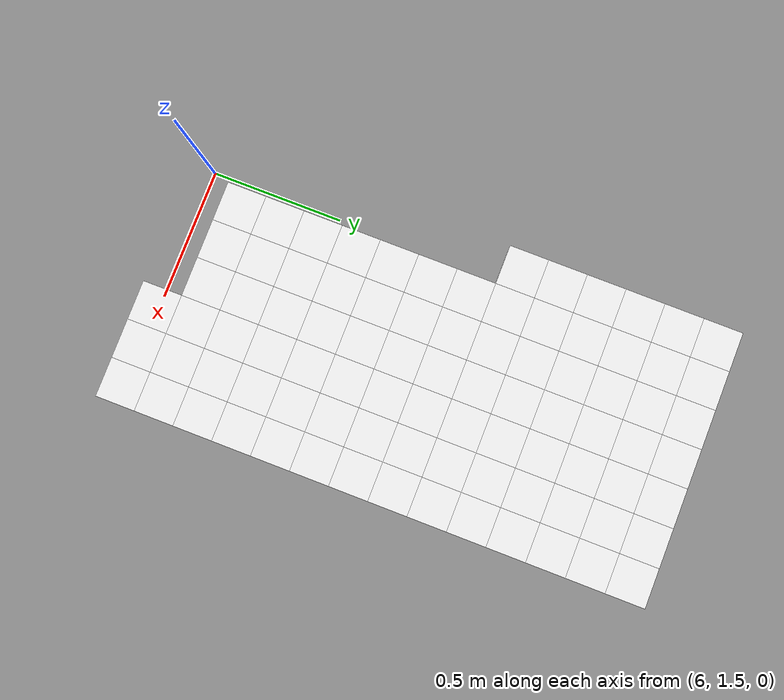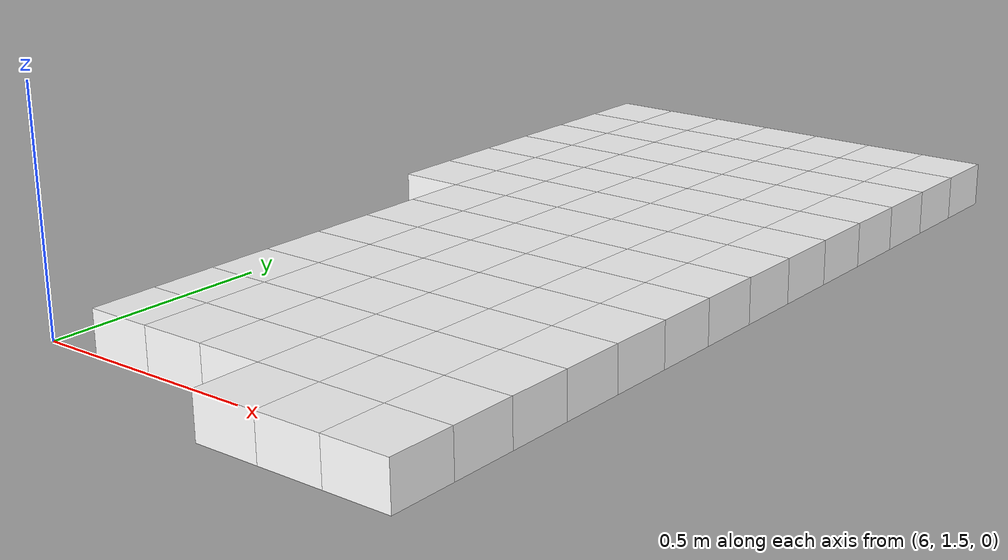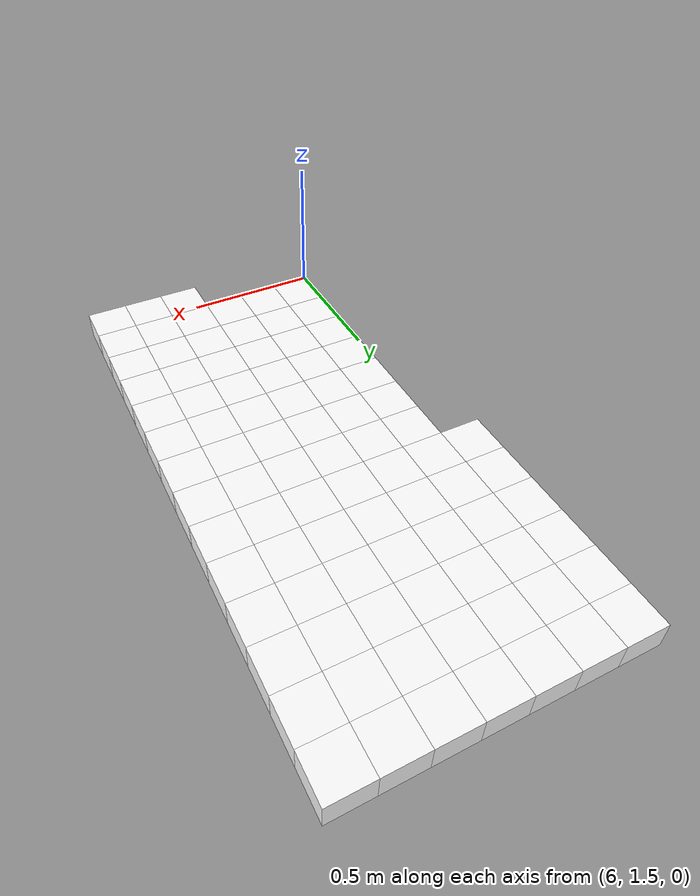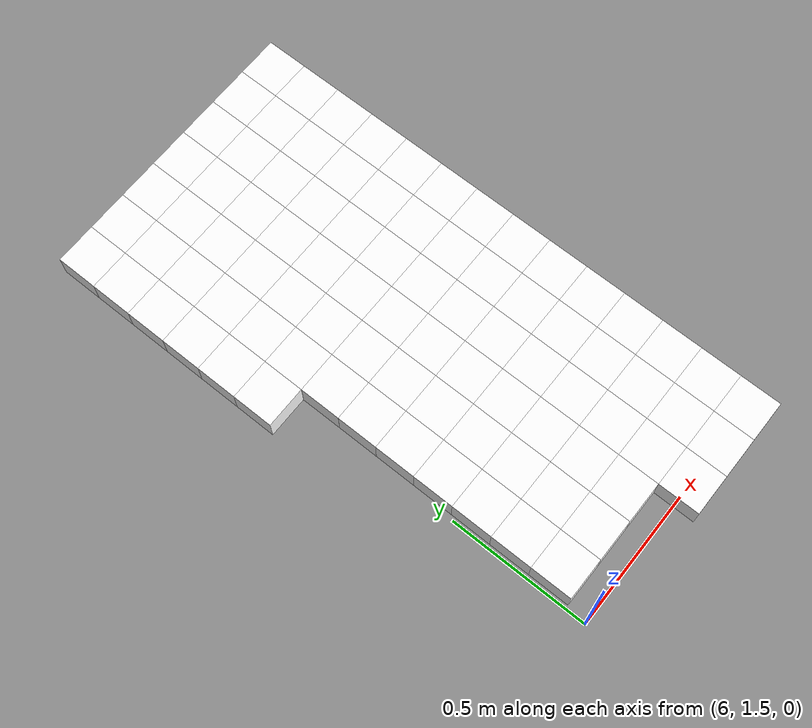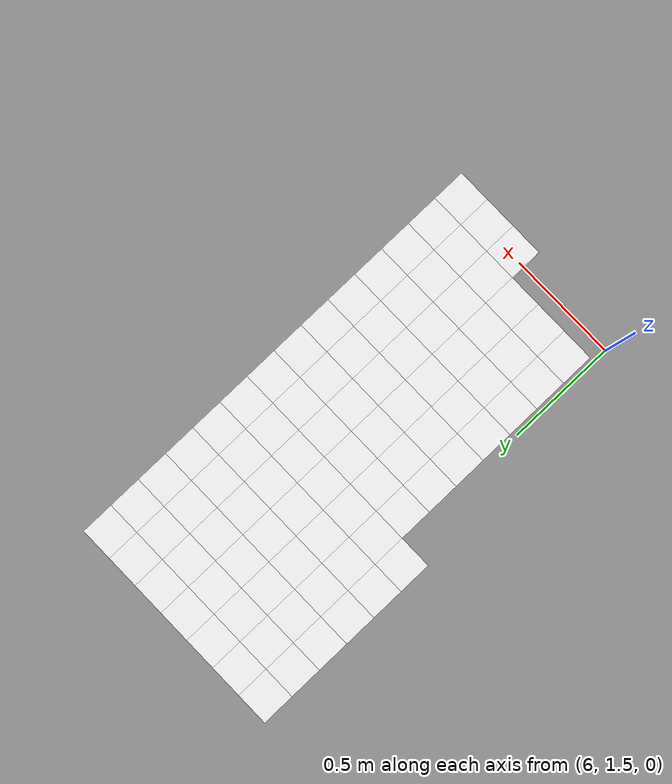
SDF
<sdf version="1.7">
 <world name="default">
  <include><uri>model://sun</uri></include>
  <model name="static_environment">
   <static>true</static>
   <link name="region_701">
    <pose>6.550000000000006 1.5 0.0 0.0 0.0 0.0</pose>
    <collision name="region_701_collision">
     <geometry><box><size>0.15 0.15 0.1</size></box></geometry>
     <surface><friction><ode><mu>1.0</mu><mu2>1.0</mu2></ode></friction></surface>
    </collision>
    <visual name="region_701_visual">
     <geometry><box><size>0.15 0.15 0.1</size></box></geometry>
     <material><ambient>1.0 1.0 1.0 1.0</ambient><diffuse>1.0 1.0 1.0 1.0</diffuse></material>
    </visual>
   </link>
   <link name="region_702">
    <pose>6.700000000000006 1.5 0.0 0.0 0.0 0.0</pose>
    <collision name="region_702_collision">
     <geometry><box><size>0.15 0.15 0.1</size></box></geometry>
     <surface><friction><ode><mu>1.0</mu><mu2>1.0</mu2></ode></friction></surface>
    </collision>
    <visual name="region_702_visual">
     <geometry><box><size>0.15 0.15 0.1</size></box></geometry>
     <material><ambient>1.0 1.0 1.0 1.0</ambient><diffuse>1.0 1.0 1.0 1.0</diffuse></material>
    </visual>
   </link>
   <link name="region_703">
    <pose>6.850000000000007 1.5 0.0 0.0 0.0 0.0</pose>
    <collision name="region_703_collision">
     <geometry><box><size>0.15 0.15 0.1</size></box></geometry>
     <surface><friction><ode><mu>1.0</mu><mu2>1.0</mu2></ode></friction></surface>
    </collision>
    <visual name="region_703_visual">
     <geometry><box><size>0.15 0.15 0.1</size></box></geometry>
     <material><ambient>1.0 1.0 1.0 1.0</ambient><diffuse>1.0 1.0 1.0 1.0</diffuse></material>
    </visual>
   </link>
   <link name="region_718">
    <pose>6.100000000000005 1.65 0.0 0.0 0.0 0.0</pose>
    <collision name="region_718_collision">
     <geometry><box><size>0.15 0.15 0.1</size></box></geometry>
     <surface><friction><ode><mu>1.0</mu><mu2>1.0</mu2></ode></friction></surface>
    </collision>
    <visual name="region_718_visual">
     <geometry><box><size>0.15 0.15 0.1</size></box></geometry>
     <material><ambient>1.0 1.0 1.0 1.0</ambient><diffuse>1.0 1.0 1.0 1.0</diffuse></material>
    </visual>
   </link>
   <link name="region_719">
    <pose>6.250000000000005 1.65 0.0 0.0 0.0 0.0</pose>
    <collision name="region_719_collision">
     <geometry><box><size>0.15 0.15 0.1</size></box></geometry>
     <surface><friction><ode><mu>1.0</mu><mu2>1.0</mu2></ode></friction></surface>
    </collision>
    <visual name="region_719_visual">
     <geometry><box><size>0.15 0.15 0.1</size></box></geometry>
     <material><ambient>1.0 1.0 1.0 1.0</ambient><diffuse>1.0 1.0 1.0 1.0</diffuse></material>
    </visual>
   </link>
   <link name="region_720">
    <pose>6.400000000000006 1.65 0.0 0.0 0.0 0.0</pose>
    <collision name="region_720_collision">
     <geometry><box><size>0.15 0.15 0.1</size></box></geometry>
     <surface><friction><ode><mu>1.0</mu><mu2>1.0</mu2></ode></friction></surface>
    </collision>
    <visual name="region_720_visual">
     <geometry><box><size>0.15 0.15 0.1</size></box></geometry>
     <material><ambient>1.0 1.0 1.0 1.0</ambient><diffuse>1.0 1.0 1.0 1.0</diffuse></material>
    </visual>
   </link>
   <link name="region_721">
    <pose>6.550000000000006 1.65 0.0 0.0 0.0 0.0</pose>
    <collision name="region_721_collision">
     <geometry><box><size>0.15 0.15 0.1</size></box></geometry>
     <surface><friction><ode><mu>1.0</mu><mu2>1.0</mu2></ode></friction></surface>
    </collision>
    <visual name="region_721_visual">
     <geometry><box><size>0.15 0.15 0.1</size></box></geometry>
     <material><ambient>1.0 1.0 1.0 1.0</ambient><diffuse>1.0 1.0 1.0 1.0</diffuse></material>
    </visual>
   </link>
   <link name="region_722">
    <pose>6.700000000000006 1.65 0.0 0.0 0.0 0.0</pose>
    <collision name="region_722_collision">
     <geometry><box><size>0.15 0.15 0.1</size></box></geometry>
     <surface><friction><ode><mu>1.0</mu><mu2>1.0</mu2></ode></friction></surface>
    </collision>
    <visual name="region_722_visual">
     <geometry><box><size>0.15 0.15 0.1</size></box></geometry>
     <material><ambient>1.0 1.0 1.0 1.0</ambient><diffuse>1.0 1.0 1.0 1.0</diffuse></material>
    </visual>
   </link>
   <link name="region_723">
    <pose>6.850000000000007 1.65 0.0 0.0 0.0 0.0</pose>
    <collision name="region_723_collision">
     <geometry><box><size>0.15 0.15 0.1</size></box></geometry>
     <surface><friction><ode><mu>1.0</mu><mu2>1.0</mu2></ode></friction></surface>
    </collision>
    <visual name="region_723_visual">
     <geometry><box><size>0.15 0.15 0.1</size></box></geometry>
     <material><ambient>1.0 1.0 1.0 1.0</ambient><diffuse>1.0 1.0 1.0 1.0</diffuse></material>
    </visual>
   </link>
   <link name="region_738">
    <pose>6.100000000000005 1.7999999999999998 0.0 0.0 0.0 0.0</pose>
    <collision name="region_738_collision">
     <geometry><box><size>0.15 0.15 0.1</size></box></geometry>
     <surface><friction><ode><mu>1.0</mu><mu2>1.0</mu2></ode></friction></surface>
    </collision>
    <visual name="region_738_visual">
     <geometry><box><size>0.15 0.15 0.1</size></box></geometry>
     <material><ambient>1.0 1.0 1.0 1.0</ambient><diffuse>1.0 1.0 1.0 1.0</diffuse></material>
    </visual>
   </link>
   <link name="region_739">
    <pose>6.250000000000005 1.7999999999999998 0.0 0.0 0.0 0.0</pose>
    <collision name="region_739_collision">
     <geometry><box><size>0.15 0.15 0.1</size></box></geometry>
     <surface><friction><ode><mu>1.0</mu><mu2>1.0</mu2></ode></friction></surface>
    </collision>
    <visual name="region_739_visual">
     <geometry><box><size>0.15 0.15 0.1</size></box></geometry>
     <material><ambient>1.0 1.0 1.0 1.0</ambient><diffuse>1.0 1.0 1.0 1.0</diffuse></material>
    </visual>
   </link>
   <link name="region_740">
    <pose>6.400000000000006 1.7999999999999998 0.0 0.0 0.0 0.0</pose>
    <collision name="region_740_collision">
     <geometry><box><size>0.15 0.15 0.1</size></box></geometry>
     <surface><friction><ode><mu>1.0</mu><mu2>1.0</mu2></ode></friction></surface>
    </collision>
    <visual name="region_740_visual">
     <geometry><box><size>0.15 0.15 0.1</size></box></geometry>
     <material><ambient>1.0 1.0 1.0 1.0</ambient><diffuse>1.0 1.0 1.0 1.0</diffuse></material>
    </visual>
   </link>
   <link name="region_741">
    <pose>6.550000000000006 1.7999999999999998 0.0 0.0 0.0 0.0</pose>
    <collision name="region_741_collision">
     <geometry><box><size>0.15 0.15 0.1</size></box></geometry>
     <surface><friction><ode><mu>1.0</mu><mu2>1.0</mu2></ode></friction></surface>
    </collision>
    <visual name="region_741_visual">
     <geometry><box><size>0.15 0.15 0.1</size></box></geometry>
     <material><ambient>1.0 1.0 1.0 1.0</ambient><diffuse>1.0 1.0 1.0 1.0</diffuse></material>
    </visual>
   </link>
   <link name="region_742">
    <pose>6.700000000000006 1.7999999999999998 0.0 0.0 0.0 0.0</pose>
    <collision name="region_742_collision">
     <geometry><box><size>0.15 0.15 0.1</size></box></geometry>
     <surface><friction><ode><mu>1.0</mu><mu2>1.0</mu2></ode></friction></surface>
    </collision>
    <visual name="region_742_visual">
     <geometry><box><size>0.15 0.15 0.1</size></box></geometry>
     <material><ambient>1.0 1.0 1.0 1.0</ambient><diffuse>1.0 1.0 1.0 1.0</diffuse></material>
    </visual>
   </link>
   <link name="region_743">
    <pose>6.850000000000007 1.7999999999999998 0.0 0.0 0.0 0.0</pose>
    <collision name="region_743_collision">
     <geometry><box><size>0.15 0.15 0.1</size></box></geometry>
     <surface><friction><ode><mu>1.0</mu><mu2>1.0</mu2></ode></friction></surface>
    </collision>
    <visual name="region_743_visual">
     <geometry><box><size>0.15 0.15 0.1</size></box></geometry>
     <material><ambient>1.0 1.0 1.0 1.0</ambient><diffuse>1.0 1.0 1.0 1.0</diffuse></material>
    </visual>
   </link>
   <link name="region_758">
    <pose>6.100000000000005 1.9499999999999997 0.0 0.0 0.0 0.0</pose>
    <collision name="region_758_collision">
     <geometry><box><size>0.15 0.15 0.1</size></box></geometry>
     <surface><friction><ode><mu>1.0</mu><mu2>1.0</mu2></ode></friction></surface>
    </collision>
    <visual name="region_758_visual">
     <geometry><box><size>0.15 0.15 0.1</size></box></geometry>
     <material><ambient>1.0 1.0 1.0 1.0</ambient><diffuse>1.0 1.0 1.0 1.0</diffuse></material>
    </visual>
   </link>
   <link name="region_759">
    <pose>6.250000000000005 1.9499999999999997 0.0 0.0 0.0 0.0</pose>
    <collision name="region_759_collision">
     <geometry><box><size>0.15 0.15 0.1</size></box></geometry>
     <surface><friction><ode><mu>1.0</mu><mu2>1.0</mu2></ode></friction></surface>
    </collision>
    <visual name="region_759_visual">
     <geometry><box><size>0.15 0.15 0.1</size></box></geometry>
     <material><ambient>1.0 1.0 1.0 1.0</ambient><diffuse>1.0 1.0 1.0 1.0</diffuse></material>
    </visual>
   </link>
   <link name="region_760">
    <pose>6.400000000000006 1.9499999999999997 0.0 0.0 0.0 0.0</pose>
    <collision name="region_760_collision">
     <geometry><box><size>0.15 0.15 0.1</size></box></geometry>
     <surface><friction><ode><mu>1.0</mu><mu2>1.0</mu2></ode></friction></surface>
    </collision>
    <visual name="region_760_visual">
     <geometry><box><size>0.15 0.15 0.1</size></box></geometry>
     <material><ambient>1.0 1.0 1.0 1.0</ambient><diffuse>1.0 1.0 1.0 1.0</diffuse></material>
    </visual>
   </link>
   <link name="region_761">
    <pose>6.550000000000006 1.9499999999999997 0.0 0.0 0.0 0.0</pose>
    <collision name="region_761_collision">
     <geometry><box><size>0.15 0.15 0.1</size></box></geometry>
     <surface><friction><ode><mu>1.0</mu><mu2>1.0</mu2></ode></friction></surface>
    </collision>
    <visual name="region_761_visual">
     <geometry><box><size>0.15 0.15 0.1</size></box></geometry>
     <material><ambient>1.0 1.0 1.0 1.0</ambient><diffuse>1.0 1.0 1.0 1.0</diffuse></material>
    </visual>
   </link>
   <link name="region_762">
    <pose>6.700000000000006 1.9499999999999997 0.0 0.0 0.0 0.0</pose>
    <collision name="region_762_collision">
     <geometry><box><size>0.15 0.15 0.1</size></box></geometry>
     <surface><friction><ode><mu>1.0</mu><mu2>1.0</mu2></ode></friction></surface>
    </collision>
    <visual name="region_762_visual">
     <geometry><box><size>0.15 0.15 0.1</size></box></geometry>
     <material><ambient>1.0 1.0 1.0 1.0</ambient><diffuse>1.0 1.0 1.0 1.0</diffuse></material>
    </visual>
   </link>
   <link name="region_763">
    <pose>6.850000000000007 1.9499999999999997 0.0 0.0 0.0 0.0</pose>
    <collision name="region_763_collision">
     <geometry><box><size>0.15 0.15 0.1</size></box></geometry>
     <surface><friction><ode><mu>1.0</mu><mu2>1.0</mu2></ode></friction></surface>
    </collision>
    <visual name="region_763_visual">
     <geometry><box><size>0.15 0.15 0.1</size></box></geometry>
     <material><ambient>1.0 1.0 1.0 1.0</ambient><diffuse>1.0 1.0 1.0 1.0</diffuse></material>
    </visual>
   </link>
   <link name="region_778">
    <pose>6.100000000000005 2.0999999999999996 0.0 0.0 0.0 0.0</pose>
    <collision name="region_778_collision">
     <geometry><box><size>0.15 0.15 0.1</size></box></geometry>
     <surface><friction><ode><mu>1.0</mu><mu2>1.0</mu2></ode></friction></surface>
    </collision>
    <visual name="region_778_visual">
     <geometry><box><size>0.15 0.15 0.1</size></box></geometry>
     <material><ambient>1.0 1.0 1.0 1.0</ambient><diffuse>1.0 1.0 1.0 1.0</diffuse></material>
    </visual>
   </link>
   <link name="region_779">
    <pose>6.250000000000005 2.0999999999999996 0.0 0.0 0.0 0.0</pose>
    <collision name="region_779_collision">
     <geometry><box><size>0.15 0.15 0.1</size></box></geometry>
     <surface><friction><ode><mu>1.0</mu><mu2>1.0</mu2></ode></friction></surface>
    </collision>
    <visual name="region_779_visual">
     <geometry><box><size>0.15 0.15 0.1</size></box></geometry>
     <material><ambient>1.0 1.0 1.0 1.0</ambient><diffuse>1.0 1.0 1.0 1.0</diffuse></material>
    </visual>
   </link>
   <link name="region_780">
    <pose>6.400000000000006 2.0999999999999996 0.0 0.0 0.0 0.0</pose>
    <collision name="region_780_collision">
     <geometry><box><size>0.15 0.15 0.1</size></box></geometry>
     <surface><friction><ode><mu>1.0</mu><mu2>1.0</mu2></ode></friction></surface>
    </collision>
    <visual name="region_780_visual">
     <geometry><box><size>0.15 0.15 0.1</size></box></geometry>
     <material><ambient>1.0 1.0 1.0 1.0</ambient><diffuse>1.0 1.0 1.0 1.0</diffuse></material>
    </visual>
   </link>
   <link name="region_781">
    <pose>6.550000000000006 2.0999999999999996 0.0 0.0 0.0 0.0</pose>
    <collision name="region_781_collision">
     <geometry><box><size>0.15 0.15 0.1</size></box></geometry>
     <surface><friction><ode><mu>1.0</mu><mu2>1.0</mu2></ode></friction></surface>
    </collision>
    <visual name="region_781_visual">
     <geometry><box><size>0.15 0.15 0.1</size></box></geometry>
     <material><ambient>1.0 1.0 1.0 1.0</ambient><diffuse>1.0 1.0 1.0 1.0</diffuse></material>
    </visual>
   </link>
   <link name="region_782">
    <pose>6.700000000000006 2.0999999999999996 0.0 0.0 0.0 0.0</pose>
    <collision name="region_782_collision">
     <geometry><box><size>0.15 0.15 0.1</size></box></geometry>
     <surface><friction><ode><mu>1.0</mu><mu2>1.0</mu2></ode></friction></surface>
    </collision>
    <visual name="region_782_visual">
     <geometry><box><size>0.15 0.15 0.1</size></box></geometry>
     <material><ambient>1.0 1.0 1.0 1.0</ambient><diffuse>1.0 1.0 1.0 1.0</diffuse></material>
    </visual>
   </link>
   <link name="region_783">
    <pose>6.850000000000007 2.0999999999999996 0.0 0.0 0.0 0.0</pose>
    <collision name="region_783_collision">
     <geometry><box><size>0.15 0.15 0.1</size></box></geometry>
     <surface><friction><ode><mu>1.0</mu><mu2>1.0</mu2></ode></friction></surface>
    </collision>
    <visual name="region_783_visual">
     <geometry><box><size>0.15 0.15 0.1</size></box></geometry>
     <material><ambient>1.0 1.0 1.0 1.0</ambient><diffuse>1.0 1.0 1.0 1.0</diffuse></material>
    </visual>
   </link>
   <link name="region_798">
    <pose>6.100000000000005 2.2499999999999996 0.0 0.0 0.0 0.0</pose>
    <collision name="region_798_collision">
     <geometry><box><size>0.15 0.15 0.1</size></box></geometry>
     <surface><friction><ode><mu>1.0</mu><mu2>1.0</mu2></ode></friction></surface>
    </collision>
    <visual name="region_798_visual">
     <geometry><box><size>0.15 0.15 0.1</size></box></geometry>
     <material><ambient>1.0 1.0 1.0 1.0</ambient><diffuse>1.0 1.0 1.0 1.0</diffuse></material>
    </visual>
   </link>
   <link name="region_799">
    <pose>6.250000000000005 2.2499999999999996 0.0 0.0 0.0 0.0</pose>
    <collision name="region_799_collision">
     <geometry><box><size>0.15 0.15 0.1</size></box></geometry>
     <surface><friction><ode><mu>1.0</mu><mu2>1.0</mu2></ode></friction></surface>
    </collision>
    <visual name="region_799_visual">
     <geometry><box><size>0.15 0.15 0.1</size></box></geometry>
     <material><ambient>1.0 1.0 1.0 1.0</ambient><diffuse>1.0 1.0 1.0 1.0</diffuse></material>
    </visual>
   </link>
   <link name="region_800">
    <pose>6.400000000000006 2.2499999999999996 0.0 0.0 0.0 0.0</pose>
    <collision name="region_800_collision">
     <geometry><box><size>0.15 0.15 0.1</size></box></geometry>
     <surface><friction><ode><mu>1.0</mu><mu2>1.0</mu2></ode></friction></surface>
    </collision>
    <visual name="region_800_visual">
     <geometry><box><size>0.15 0.15 0.1</size></box></geometry>
     <material><ambient>1.0 1.0 1.0 1.0</ambient><diffuse>1.0 1.0 1.0 1.0</diffuse></material>
    </visual>
   </link>
   <link name="region_801">
    <pose>6.550000000000006 2.2499999999999996 0.0 0.0 0.0 0.0</pose>
    <collision name="region_801_collision">
     <geometry><box><size>0.15 0.15 0.1</size></box></geometry>
     <surface><friction><ode><mu>1.0</mu><mu2>1.0</mu2></ode></friction></surface>
    </collision>
    <visual name="region_801_visual">
     <geometry><box><size>0.15 0.15 0.1</size></box></geometry>
     <material><ambient>1.0 1.0 1.0 1.0</ambient><diffuse>1.0 1.0 1.0 1.0</diffuse></material>
    </visual>
   </link>
   <link name="region_802">
    <pose>6.700000000000006 2.2499999999999996 0.0 0.0 0.0 0.0</pose>
    <collision name="region_802_collision">
     <geometry><box><size>0.15 0.15 0.1</size></box></geometry>
     <surface><friction><ode><mu>1.0</mu><mu2>1.0</mu2></ode></friction></surface>
    </collision>
    <visual name="region_802_visual">
     <geometry><box><size>0.15 0.15 0.1</size></box></geometry>
     <material><ambient>1.0 1.0 1.0 1.0</ambient><diffuse>1.0 1.0 1.0 1.0</diffuse></material>
    </visual>
   </link>
   <link name="region_803">
    <pose>6.850000000000007 2.2499999999999996 0.0 0.0 0.0 0.0</pose>
    <collision name="region_803_collision">
     <geometry><box><size>0.15 0.15 0.1</size></box></geometry>
     <surface><friction><ode><mu>1.0</mu><mu2>1.0</mu2></ode></friction></surface>
    </collision>
    <visual name="region_803_visual">
     <geometry><box><size>0.15 0.15 0.1</size></box></geometry>
     <material><ambient>1.0 1.0 1.0 1.0</ambient><diffuse>1.0 1.0 1.0 1.0</diffuse></material>
    </visual>
   </link>
   <link name="region_818">
    <pose>6.100000000000005 2.3999999999999995 0.0 0.0 0.0 0.0</pose>
    <collision name="region_818_collision">
     <geometry><box><size>0.15 0.15 0.1</size></box></geometry>
     <surface><friction><ode><mu>1.0</mu><mu2>1.0</mu2></ode></friction></surface>
    </collision>
    <visual name="region_818_visual">
     <geometry><box><size>0.15 0.15 0.1</size></box></geometry>
     <material><ambient>1.0 1.0 1.0 1.0</ambient><diffuse>1.0 1.0 1.0 1.0</diffuse></material>
    </visual>
   </link>
   <link name="region_819">
    <pose>6.250000000000005 2.3999999999999995 0.0 0.0 0.0 0.0</pose>
    <collision name="region_819_collision">
     <geometry><box><size>0.15 0.15 0.1</size></box></geometry>
     <surface><friction><ode><mu>1.0</mu><mu2>1.0</mu2></ode></friction></surface>
    </collision>
    <visual name="region_819_visual">
     <geometry><box><size>0.15 0.15 0.1</size></box></geometry>
     <material><ambient>1.0 1.0 1.0 1.0</ambient><diffuse>1.0 1.0 1.0 1.0</diffuse></material>
    </visual>
   </link>
   <link name="region_820">
    <pose>6.400000000000006 2.3999999999999995 0.0 0.0 0.0 0.0</pose>
    <collision name="region_820_collision">
     <geometry><box><size>0.15 0.15 0.1</size></box></geometry>
     <surface><friction><ode><mu>1.0</mu><mu2>1.0</mu2></ode></friction></surface>
    </collision>
    <visual name="region_820_visual">
     <geometry><box><size>0.15 0.15 0.1</size></box></geometry>
     <material><ambient>1.0 1.0 1.0 1.0</ambient><diffuse>1.0 1.0 1.0 1.0</diffuse></material>
    </visual>
   </link>
   <link name="region_821">
    <pose>6.550000000000006 2.3999999999999995 0.0 0.0 0.0 0.0</pose>
    <collision name="region_821_collision">
     <geometry><box><size>0.15 0.15 0.1</size></box></geometry>
     <surface><friction><ode><mu>1.0</mu><mu2>1.0</mu2></ode></friction></surface>
    </collision>
    <visual name="region_821_visual">
     <geometry><box><size>0.15 0.15 0.1</size></box></geometry>
     <material><ambient>1.0 1.0 1.0 1.0</ambient><diffuse>1.0 1.0 1.0 1.0</diffuse></material>
    </visual>
   </link>
   <link name="region_822">
    <pose>6.700000000000006 2.3999999999999995 0.0 0.0 0.0 0.0</pose>
    <collision name="region_822_collision">
     <geometry><box><size>0.15 0.15 0.1</size></box></geometry>
     <surface><friction><ode><mu>1.0</mu><mu2>1.0</mu2></ode></friction></surface>
    </collision>
    <visual name="region_822_visual">
     <geometry><box><size>0.15 0.15 0.1</size></box></geometry>
     <material><ambient>1.0 1.0 1.0 1.0</ambient><diffuse>1.0 1.0 1.0 1.0</diffuse></material>
    </visual>
   </link>
   <link name="region_823">
    <pose>6.850000000000007 2.3999999999999995 0.0 0.0 0.0 0.0</pose>
    <collision name="region_823_collision">
     <geometry><box><size>0.15 0.15 0.1</size></box></geometry>
     <surface><friction><ode><mu>1.0</mu><mu2>1.0</mu2></ode></friction></surface>
    </collision>
    <visual name="region_823_visual">
     <geometry><box><size>0.15 0.15 0.1</size></box></geometry>
     <material><ambient>1.0 1.0 1.0 1.0</ambient><diffuse>1.0 1.0 1.0 1.0</diffuse></material>
    </visual>
   </link>
   <link name="region_838">
    <pose>6.100000000000005 2.5499999999999994 0.0 0.0 0.0 0.0</pose>
    <collision name="region_838_collision">
     <geometry><box><size>0.15 0.15 0.1</size></box></geometry>
     <surface><friction><ode><mu>1.0</mu><mu2>1.0</mu2></ode></friction></surface>
    </collision>
    <visual name="region_838_visual">
     <geometry><box><size>0.15 0.15 0.1</size></box></geometry>
     <material><ambient>1.0 1.0 1.0 1.0</ambient><diffuse>1.0 1.0 1.0 1.0</diffuse></material>
    </visual>
   </link>
   <link name="region_839">
    <pose>6.250000000000005 2.5499999999999994 0.0 0.0 0.0 0.0</pose>
    <collision name="region_839_collision">
     <geometry><box><size>0.15 0.15 0.1</size></box></geometry>
     <surface><friction><ode><mu>1.0</mu><mu2>1.0</mu2></ode></friction></surface>
    </collision>
    <visual name="region_839_visual">
     <geometry><box><size>0.15 0.15 0.1</size></box></geometry>
     <material><ambient>1.0 1.0 1.0 1.0</ambient><diffuse>1.0 1.0 1.0 1.0</diffuse></material>
    </visual>
   </link>
   <link name="region_840">
    <pose>6.400000000000006 2.5499999999999994 0.0 0.0 0.0 0.0</pose>
    <collision name="region_840_collision">
     <geometry><box><size>0.15 0.15 0.1</size></box></geometry>
     <surface><friction><ode><mu>1.0</mu><mu2>1.0</mu2></ode></friction></surface>
    </collision>
    <visual name="region_840_visual">
     <geometry><box><size>0.15 0.15 0.1</size></box></geometry>
     <material><ambient>1.0 1.0 1.0 1.0</ambient><diffuse>1.0 1.0 1.0 1.0</diffuse></material>
    </visual>
   </link>
   <link name="region_841">
    <pose>6.550000000000006 2.5499999999999994 0.0 0.0 0.0 0.0</pose>
    <collision name="region_841_collision">
     <geometry><box><size>0.15 0.15 0.1</size></box></geometry>
     <surface><friction><ode><mu>1.0</mu><mu2>1.0</mu2></ode></friction></surface>
    </collision>
    <visual name="region_841_visual">
     <geometry><box><size>0.15 0.15 0.1</size></box></geometry>
     <material><ambient>1.0 1.0 1.0 1.0</ambient><diffuse>1.0 1.0 1.0 1.0</diffuse></material>
    </visual>
   </link>
   <link name="region_842">
    <pose>6.700000000000006 2.5499999999999994 0.0 0.0 0.0 0.0</pose>
    <collision name="region_842_collision">
     <geometry><box><size>0.15 0.15 0.1</size></box></geometry>
     <surface><friction><ode><mu>1.0</mu><mu2>1.0</mu2></ode></friction></surface>
    </collision>
    <visual name="region_842_visual">
     <geometry><box><size>0.15 0.15 0.1</size></box></geometry>
     <material><ambient>1.0 1.0 1.0 1.0</ambient><diffuse>1.0 1.0 1.0 1.0</diffuse></material>
    </visual>
   </link>
   <link name="region_843">
    <pose>6.850000000000007 2.5499999999999994 0.0 0.0 0.0 0.0</pose>
    <collision name="region_843_collision">
     <geometry><box><size>0.15 0.15 0.1</size></box></geometry>
     <surface><friction><ode><mu>1.0</mu><mu2>1.0</mu2></ode></friction></surface>
    </collision>
    <visual name="region_843_visual">
     <geometry><box><size>0.15 0.15 0.1</size></box></geometry>
     <material><ambient>1.0 1.0 1.0 1.0</ambient><diffuse>1.0 1.0 1.0 1.0</diffuse></material>
    </visual>
   </link>
   <link name="region_857">
    <pose>5.950000000000005 2.6999999999999997 0.0 0.0 0.0 0.0</pose>
    <collision name="region_857_collision">
     <geometry><box><size>0.15 0.15 0.1</size></box></geometry>
     <surface><friction><ode><mu>1.0</mu><mu2>1.0</mu2></ode></friction></surface>
    </collision>
    <visual name="region_857_visual">
     <geometry><box><size>0.15 0.15 0.1</size></box></geometry>
     <material><ambient>1.0 1.0 1.0 1.0</ambient><diffuse>1.0 1.0 1.0 1.0</diffuse></material>
    </visual>
   </link>
   <link name="region_858">
    <pose>6.100000000000005 2.6999999999999997 0.0 0.0 0.0 0.0</pose>
    <collision name="region_858_collision">
     <geometry><box><size>0.15 0.15 0.1</size></box></geometry>
     <surface><friction><ode><mu>1.0</mu><mu2>1.0</mu2></ode></friction></surface>
    </collision>
    <visual name="region_858_visual">
     <geometry><box><size>0.15 0.15 0.1</size></box></geometry>
     <material><ambient>1.0 1.0 1.0 1.0</ambient><diffuse>1.0 1.0 1.0 1.0</diffuse></material>
    </visual>
   </link>
   <link name="region_859">
    <pose>6.250000000000005 2.6999999999999997 0.0 0.0 0.0 0.0</pose>
    <collision name="region_859_collision">
     <geometry><box><size>0.15 0.15 0.1</size></box></geometry>
     <surface><friction><ode><mu>1.0</mu><mu2>1.0</mu2></ode></friction></surface>
    </collision>
    <visual name="region_859_visual">
     <geometry><box><size>0.15 0.15 0.1</size></box></geometry>
     <material><ambient>1.0 1.0 1.0 1.0</ambient><diffuse>1.0 1.0 1.0 1.0</diffuse></material>
    </visual>
   </link>
   <link name="region_860">
    <pose>6.400000000000006 2.6999999999999997 0.0 0.0 0.0 0.0</pose>
    <collision name="region_860_collision">
     <geometry><box><size>0.15 0.15 0.1</size></box></geometry>
     <surface><friction><ode><mu>1.0</mu><mu2>1.0</mu2></ode></friction></surface>
    </collision>
    <visual name="region_860_visual">
     <geometry><box><size>0.15 0.15 0.1</size></box></geometry>
     <material><ambient>1.0 1.0 1.0 1.0</ambient><diffuse>1.0 1.0 1.0 1.0</diffuse></material>
    </visual>
   </link>
   <link name="region_861">
    <pose>6.550000000000006 2.6999999999999997 0.0 0.0 0.0 0.0</pose>
    <collision name="region_861_collision">
     <geometry><box><size>0.15 0.15 0.1</size></box></geometry>
     <surface><friction><ode><mu>1.0</mu><mu2>1.0</mu2></ode></friction></surface>
    </collision>
    <visual name="region_861_visual">
     <geometry><box><size>0.15 0.15 0.1</size></box></geometry>
     <material><ambient>1.0 1.0 1.0 1.0</ambient><diffuse>1.0 1.0 1.0 1.0</diffuse></material>
    </visual>
   </link>
   <link name="region_862">
    <pose>6.700000000000006 2.6999999999999997 0.0 0.0 0.0 0.0</pose>
    <collision name="region_862_collision">
     <geometry><box><size>0.15 0.15 0.1</size></box></geometry>
     <surface><friction><ode><mu>1.0</mu><mu2>1.0</mu2></ode></friction></surface>
    </collision>
    <visual name="region_862_visual">
     <geometry><box><size>0.15 0.15 0.1</size></box></geometry>
     <material><ambient>1.0 1.0 1.0 1.0</ambient><diffuse>1.0 1.0 1.0 1.0</diffuse></material>
    </visual>
   </link>
   <link name="region_863">
    <pose>6.850000000000007 2.6999999999999997 0.0 0.0 0.0 0.0</pose>
    <collision name="region_863_collision">
     <geometry><box><size>0.15 0.15 0.1</size></box></geometry>
     <surface><friction><ode><mu>1.0</mu><mu2>1.0</mu2></ode></friction></surface>
    </collision>
    <visual name="region_863_visual">
     <geometry><box><size>0.15 0.15 0.1</size></box></geometry>
     <material><ambient>1.0 1.0 1.0 1.0</ambient><diffuse>1.0 1.0 1.0 1.0</diffuse></material>
    </visual>
   </link>
   <link name="region_877">
    <pose>5.950000000000005 2.8499999999999996 0.0 0.0 0.0 0.0</pose>
    <collision name="region_877_collision">
     <geometry><box><size>0.15 0.15 0.1</size></box></geometry>
     <surface><friction><ode><mu>1.0</mu><mu2>1.0</mu2></ode></friction></surface>
    </collision>
    <visual name="region_877_visual">
     <geometry><box><size>0.15 0.15 0.1</size></box></geometry>
     <material><ambient>1.0 1.0 1.0 1.0</ambient><diffuse>1.0 1.0 1.0 1.0</diffuse></material>
    </visual>
   </link>
   <link name="region_878">
    <pose>6.100000000000005 2.8499999999999996 0.0 0.0 0.0 0.0</pose>
    <collision name="region_878_collision">
     <geometry><box><size>0.15 0.15 0.1</size></box></geometry>
     <surface><friction><ode><mu>1.0</mu><mu2>1.0</mu2></ode></friction></surface>
    </collision>
    <visual name="region_878_visual">
     <geometry><box><size>0.15 0.15 0.1</size></box></geometry>
     <material><ambient>1.0 1.0 1.0 1.0</ambient><diffuse>1.0 1.0 1.0 1.0</diffuse></material>
    </visual>
   </link>
   <link name="region_879">
    <pose>6.250000000000005 2.8499999999999996 0.0 0.0 0.0 0.0</pose>
    <collision name="region_879_collision">
     <geometry><box><size>0.15 0.15 0.1</size></box></geometry>
     <surface><friction><ode><mu>1.0</mu><mu2>1.0</mu2></ode></friction></surface>
    </collision>
    <visual name="region_879_visual">
     <geometry><box><size>0.15 0.15 0.1</size></box></geometry>
     <material><ambient>1.0 1.0 1.0 1.0</ambient><diffuse>1.0 1.0 1.0 1.0</diffuse></material>
    </visual>
   </link>
   <link name="region_880">
    <pose>6.400000000000006 2.8499999999999996 0.0 0.0 0.0 0.0</pose>
    <collision name="region_880_collision">
     <geometry><box><size>0.15 0.15 0.1</size></box></geometry>
     <surface><friction><ode><mu>1.0</mu><mu2>1.0</mu2></ode></friction></surface>
    </collision>
    <visual name="region_880_visual">
     <geometry><box><size>0.15 0.15 0.1</size></box></geometry>
     <material><ambient>1.0 1.0 1.0 1.0</ambient><diffuse>1.0 1.0 1.0 1.0</diffuse></material>
    </visual>
   </link>
   <link name="region_881">
    <pose>6.550000000000006 2.8499999999999996 0.0 0.0 0.0 0.0</pose>
    <collision name="region_881_collision">
     <geometry><box><size>0.15 0.15 0.1</size></box></geometry>
     <surface><friction><ode><mu>1.0</mu><mu2>1.0</mu2></ode></friction></surface>
    </collision>
    <visual name="region_881_visual">
     <geometry><box><size>0.15 0.15 0.1</size></box></geometry>
     <material><ambient>1.0 1.0 1.0 1.0</ambient><diffuse>1.0 1.0 1.0 1.0</diffuse></material>
    </visual>
   </link>
   <link name="region_882">
    <pose>6.700000000000006 2.8499999999999996 0.0 0.0 0.0 0.0</pose>
    <collision name="region_882_collision">
     <geometry><box><size>0.15 0.15 0.1</size></box></geometry>
     <surface><friction><ode><mu>1.0</mu><mu2>1.0</mu2></ode></friction></surface>
    </collision>
    <visual name="region_882_visual">
     <geometry><box><size>0.15 0.15 0.1</size></box></geometry>
     <material><ambient>1.0 1.0 1.0 1.0</ambient><diffuse>1.0 1.0 1.0 1.0</diffuse></material>
    </visual>
   </link>
   <link name="region_883">
    <pose>6.850000000000007 2.8499999999999996 0.0 0.0 0.0 0.0</pose>
    <collision name="region_883_collision">
     <geometry><box><size>0.15 0.15 0.1</size></box></geometry>
     <surface><friction><ode><mu>1.0</mu><mu2>1.0</mu2></ode></friction></surface>
    </collision>
    <visual name="region_883_visual">
     <geometry><box><size>0.15 0.15 0.1</size></box></geometry>
     <material><ambient>1.0 1.0 1.0 1.0</ambient><diffuse>1.0 1.0 1.0 1.0</diffuse></material>
    </visual>
   </link>
   <link name="region_897">
    <pose>5.950000000000005 2.9999999999999996 0.0 0.0 0.0 0.0</pose>
    <collision name="region_897_collision">
     <geometry><box><size>0.15 0.15 0.1</size></box></geometry>
     <surface><friction><ode><mu>1.0</mu><mu2>1.0</mu2></ode></friction></surface>
    </collision>
    <visual name="region_897_visual">
     <geometry><box><size>0.15 0.15 0.1</size></box></geometry>
     <material><ambient>1.0 1.0 1.0 1.0</ambient><diffuse>1.0 1.0 1.0 1.0</diffuse></material>
    </visual>
   </link>
   <link name="region_898">
    <pose>6.100000000000005 2.9999999999999996 0.0 0.0 0.0 0.0</pose>
    <collision name="region_898_collision">
     <geometry><box><size>0.15 0.15 0.1</size></box></geometry>
     <surface><friction><ode><mu>1.0</mu><mu2>1.0</mu2></ode></friction></surface>
    </collision>
    <visual name="region_898_visual">
     <geometry><box><size>0.15 0.15 0.1</size></box></geometry>
     <material><ambient>1.0 1.0 1.0 1.0</ambient><diffuse>1.0 1.0 1.0 1.0</diffuse></material>
    </visual>
   </link>
   <link name="region_899">
    <pose>6.250000000000005 2.9999999999999996 0.0 0.0 0.0 0.0</pose>
    <collision name="region_899_collision">
     <geometry><box><size>0.15 0.15 0.1</size></box></geometry>
     <surface><friction><ode><mu>1.0</mu><mu2>1.0</mu2></ode></friction></surface>
    </collision>
    <visual name="region_899_visual">
     <geometry><box><size>0.15 0.15 0.1</size></box></geometry>
     <material><ambient>1.0 1.0 1.0 1.0</ambient><diffuse>1.0 1.0 1.0 1.0</diffuse></material>
    </visual>
   </link>
   <link name="region_900">
    <pose>6.400000000000006 2.9999999999999996 0.0 0.0 0.0 0.0</pose>
    <collision name="region_900_collision">
     <geometry><box><size>0.15 0.15 0.1</size></box></geometry>
     <surface><friction><ode><mu>1.0</mu><mu2>1.0</mu2></ode></friction></surface>
    </collision>
    <visual name="region_900_visual">
     <geometry><box><size>0.15 0.15 0.1</size></box></geometry>
     <material><ambient>1.0 1.0 1.0 1.0</ambient><diffuse>1.0 1.0 1.0 1.0</diffuse></material>
    </visual>
   </link>
   <link name="region_901">
    <pose>6.550000000000006 2.9999999999999996 0.0 0.0 0.0 0.0</pose>
    <collision name="region_901_collision">
     <geometry><box><size>0.15 0.15 0.1</size></box></geometry>
     <surface><friction><ode><mu>1.0</mu><mu2>1.0</mu2></ode></friction></surface>
    </collision>
    <visual name="region_901_visual">
     <geometry><box><size>0.15 0.15 0.1</size></box></geometry>
     <material><ambient>1.0 1.0 1.0 1.0</ambient><diffuse>1.0 1.0 1.0 1.0</diffuse></material>
    </visual>
   </link>
   <link name="region_902">
    <pose>6.700000000000006 2.9999999999999996 0.0 0.0 0.0 0.0</pose>
    <collision name="region_902_collision">
     <geometry><box><size>0.15 0.15 0.1</size></box></geometry>
     <surface><friction><ode><mu>1.0</mu><mu2>1.0</mu2></ode></friction></surface>
    </collision>
    <visual name="region_902_visual">
     <geometry><box><size>0.15 0.15 0.1</size></box></geometry>
     <material><ambient>1.0 1.0 1.0 1.0</ambient><diffuse>1.0 1.0 1.0 1.0</diffuse></material>
    </visual>
   </link>
   <link name="region_903">
    <pose>6.850000000000007 2.9999999999999996 0.0 0.0 0.0 0.0</pose>
    <collision name="region_903_collision">
     <geometry><box><size>0.15 0.15 0.1</size></box></geometry>
     <surface><friction><ode><mu>1.0</mu><mu2>1.0</mu2></ode></friction></surface>
    </collision>
    <visual name="region_903_visual">
     <geometry><box><size>0.15 0.15 0.1</size></box></geometry>
     <material><ambient>1.0 1.0 1.0 1.0</ambient><diffuse>1.0 1.0 1.0 1.0</diffuse></material>
    </visual>
   </link>
   <link name="region_917">
    <pose>5.950000000000005 3.1499999999999995 0.0 0.0 0.0 0.0</pose>
    <collision name="region_917_collision">
     <geometry><box><size>0.15 0.15 0.1</size></box></geometry>
     <surface><friction><ode><mu>1.0</mu><mu2>1.0</mu2></ode></friction></surface>
    </collision>
    <visual name="region_917_visual">
     <geometry><box><size>0.15 0.15 0.1</size></box></geometry>
     <material><ambient>1.0 1.0 1.0 1.0</ambient><diffuse>1.0 1.0 1.0 1.0</diffuse></material>
    </visual>
   </link>
   <link name="region_918">
    <pose>6.100000000000005 3.1499999999999995 0.0 0.0 0.0 0.0</pose>
    <collision name="region_918_collision">
     <geometry><box><size>0.15 0.15 0.1</size></box></geometry>
     <surface><friction><ode><mu>1.0</mu><mu2>1.0</mu2></ode></friction></surface>
    </collision>
    <visual name="region_918_visual">
     <geometry><box><size>0.15 0.15 0.1</size></box></geometry>
     <material><ambient>1.0 1.0 1.0 1.0</ambient><diffuse>1.0 1.0 1.0 1.0</diffuse></material>
    </visual>
   </link>
   <link name="region_919">
    <pose>6.250000000000005 3.1499999999999995 0.0 0.0 0.0 0.0</pose>
    <collision name="region_919_collision">
     <geometry><box><size>0.15 0.15 0.1</size></box></geometry>
     <surface><friction><ode><mu>1.0</mu><mu2>1.0</mu2></ode></friction></surface>
    </collision>
    <visual name="region_919_visual">
     <geometry><box><size>0.15 0.15 0.1</size></box></geometry>
     <material><ambient>1.0 1.0 1.0 1.0</ambient><diffuse>1.0 1.0 1.0 1.0</diffuse></material>
    </visual>
   </link>
   <link name="region_920">
    <pose>6.400000000000006 3.1499999999999995 0.0 0.0 0.0 0.0</pose>
    <collision name="region_920_collision">
     <geometry><box><size>0.15 0.15 0.1</size></box></geometry>
     <surface><friction><ode><mu>1.0</mu><mu2>1.0</mu2></ode></friction></surface>
    </collision>
    <visual name="region_920_visual">
     <geometry><box><size>0.15 0.15 0.1</size></box></geometry>
     <material><ambient>1.0 1.0 1.0 1.0</ambient><diffuse>1.0 1.0 1.0 1.0</diffuse></material>
    </visual>
   </link>
   <link name="region_921">
    <pose>6.550000000000006 3.1499999999999995 0.0 0.0 0.0 0.0</pose>
    <collision name="region_921_collision">
     <geometry><box><size>0.15 0.15 0.1</size></box></geometry>
     <surface><friction><ode><mu>1.0</mu><mu2>1.0</mu2></ode></friction></surface>
    </collision>
    <visual name="region_921_visual">
     <geometry><box><size>0.15 0.15 0.1</size></box></geometry>
     <material><ambient>1.0 1.0 1.0 1.0</ambient><diffuse>1.0 1.0 1.0 1.0</diffuse></material>
    </visual>
   </link>
   <link name="region_922">
    <pose>6.700000000000006 3.1499999999999995 0.0 0.0 0.0 0.0</pose>
    <collision name="region_922_collision">
     <geometry><box><size>0.15 0.15 0.1</size></box></geometry>
     <surface><friction><ode><mu>1.0</mu><mu2>1.0</mu2></ode></friction></surface>
    </collision>
    <visual name="region_922_visual">
     <geometry><box><size>0.15 0.15 0.1</size></box></geometry>
     <material><ambient>1.0 1.0 1.0 1.0</ambient><diffuse>1.0 1.0 1.0 1.0</diffuse></material>
    </visual>
   </link>
   <link name="region_923">
    <pose>6.850000000000007 3.1499999999999995 0.0 0.0 0.0 0.0</pose>
    <collision name="region_923_collision">
     <geometry><box><size>0.15 0.15 0.1</size></box></geometry>
     <surface><friction><ode><mu>1.0</mu><mu2>1.0</mu2></ode></friction></surface>
    </collision>
    <visual name="region_923_visual">
     <geometry><box><size>0.15 0.15 0.1</size></box></geometry>
     <material><ambient>1.0 1.0 1.0 1.0</ambient><diffuse>1.0 1.0 1.0 1.0</diffuse></material>
    </visual>
   </link>
   <link name="region_937">
    <pose>5.950000000000005 3.2999999999999994 0.0 0.0 0.0 0.0</pose>
    <collision name="region_937_collision">
     <geometry><box><size>0.15 0.15 0.1</size></box></geometry>
     <surface><friction><ode><mu>1.0</mu><mu2>1.0</mu2></ode></friction></surface>
    </collision>
    <visual name="region_937_visual">
     <geometry><box><size>0.15 0.15 0.1</size></box></geometry>
     <material><ambient>1.0 1.0 1.0 1.0</ambient><diffuse>1.0 1.0 1.0 1.0</diffuse></material>
    </visual>
   </link>
   <link name="region_938">
    <pose>6.100000000000005 3.2999999999999994 0.0 0.0 0.0 0.0</pose>
    <collision name="region_938_collision">
     <geometry><box><size>0.15 0.15 0.1</size></box></geometry>
     <surface><friction><ode><mu>1.0</mu><mu2>1.0</mu2></ode></friction></surface>
    </collision>
    <visual name="region_938_visual">
     <geometry><box><size>0.15 0.15 0.1</size></box></geometry>
     <material><ambient>1.0 1.0 1.0 1.0</ambient><diffuse>1.0 1.0 1.0 1.0</diffuse></material>
    </visual>
   </link>
   <link name="region_939">
    <pose>6.250000000000005 3.2999999999999994 0.0 0.0 0.0 0.0</pose>
    <collision name="region_939_collision">
     <geometry><box><size>0.15 0.15 0.1</size></box></geometry>
     <surface><friction><ode><mu>1.0</mu><mu2>1.0</mu2></ode></friction></surface>
    </collision>
    <visual name="region_939_visual">
     <geometry><box><size>0.15 0.15 0.1</size></box></geometry>
     <material><ambient>1.0 1.0 1.0 1.0</ambient><diffuse>1.0 1.0 1.0 1.0</diffuse></material>
    </visual>
   </link>
   <link name="region_940">
    <pose>6.400000000000006 3.2999999999999994 0.0 0.0 0.0 0.0</pose>
    <collision name="region_940_collision">
     <geometry><box><size>0.15 0.15 0.1</size></box></geometry>
     <surface><friction><ode><mu>1.0</mu><mu2>1.0</mu2></ode></friction></surface>
    </collision>
    <visual name="region_940_visual">
     <geometry><box><size>0.15 0.15 0.1</size></box></geometry>
     <material><ambient>1.0 1.0 1.0 1.0</ambient><diffuse>1.0 1.0 1.0 1.0</diffuse></material>
    </visual>
   </link>
   <link name="region_941">
    <pose>6.550000000000006 3.2999999999999994 0.0 0.0 0.0 0.0</pose>
    <collision name="region_941_collision">
     <geometry><box><size>0.15 0.15 0.1</size></box></geometry>
     <surface><friction><ode><mu>1.0</mu><mu2>1.0</mu2></ode></friction></surface>
    </collision>
    <visual name="region_941_visual">
     <geometry><box><size>0.15 0.15 0.1</size></box></geometry>
     <material><ambient>1.0 1.0 1.0 1.0</ambient><diffuse>1.0 1.0 1.0 1.0</diffuse></material>
    </visual>
   </link>
   <link name="region_942">
    <pose>6.700000000000006 3.2999999999999994 0.0 0.0 0.0 0.0</pose>
    <collision name="region_942_collision">
     <geometry><box><size>0.15 0.15 0.1</size></box></geometry>
     <surface><friction><ode><mu>1.0</mu><mu2>1.0</mu2></ode></friction></surface>
    </collision>
    <visual name="region_942_visual">
     <geometry><box><size>0.15 0.15 0.1</size></box></geometry>
     <material><ambient>1.0 1.0 1.0 1.0</ambient><diffuse>1.0 1.0 1.0 1.0</diffuse></material>
    </visual>
   </link>
   <link name="region_943">
    <pose>6.850000000000007 3.2999999999999994 0.0 0.0 0.0 0.0</pose>
    <collision name="region_943_collision">
     <geometry><box><size>0.15 0.15 0.1</size></box></geometry>
     <surface><friction><ode><mu>1.0</mu><mu2>1.0</mu2></ode></friction></surface>
    </collision>
    <visual name="region_943_visual">
     <geometry><box><size>0.15 0.15 0.1</size></box></geometry>
     <material><ambient>1.0 1.0 1.0 1.0</ambient><diffuse>1.0 1.0 1.0 1.0</diffuse></material>
    </visual>
   </link>
   <link name="region_957">
    <pose>5.950000000000005 3.4499999999999993 0.0 0.0 0.0 0.0</pose>
    <collision name="region_957_collision">
     <geometry><box><size>0.15 0.15 0.1</size></box></geometry>
     <surface><friction><ode><mu>1.0</mu><mu2>1.0</mu2></ode></friction></surface>
    </collision>
    <visual name="region_957_visual">
     <geometry><box><size>0.15 0.15 0.1</size></box></geometry>
     <material><ambient>1.0 1.0 1.0 1.0</ambient><diffuse>1.0 1.0 1.0 1.0</diffuse></material>
    </visual>
   </link>
   <link name="region_958">
    <pose>6.100000000000005 3.4499999999999993 0.0 0.0 0.0 0.0</pose>
    <collision name="region_958_collision">
     <geometry><box><size>0.15 0.15 0.1</size></box></geometry>
     <surface><friction><ode><mu>1.0</mu><mu2>1.0</mu2></ode></friction></surface>
    </collision>
    <visual name="region_958_visual">
     <geometry><box><size>0.15 0.15 0.1</size></box></geometry>
     <material><ambient>1.0 1.0 1.0 1.0</ambient><diffuse>1.0 1.0 1.0 1.0</diffuse></material>
    </visual>
   </link>
   <link name="region_959">
    <pose>6.250000000000005 3.4499999999999993 0.0 0.0 0.0 0.0</pose>
    <collision name="region_959_collision">
     <geometry><box><size>0.15 0.15 0.1</size></box></geometry>
     <surface><friction><ode><mu>1.0</mu><mu2>1.0</mu2></ode></friction></surface>
    </collision>
    <visual name="region_959_visual">
     <geometry><box><size>0.15 0.15 0.1</size></box></geometry>
     <material><ambient>1.0 1.0 1.0 1.0</ambient><diffuse>1.0 1.0 1.0 1.0</diffuse></material>
    </visual>
   </link>
   <link name="region_960">
    <pose>6.400000000000006 3.4499999999999993 0.0 0.0 0.0 0.0</pose>
    <collision name="region_960_collision">
     <geometry><box><size>0.15 0.15 0.1</size></box></geometry>
     <surface><friction><ode><mu>1.0</mu><mu2>1.0</mu2></ode></friction></surface>
    </collision>
    <visual name="region_960_visual">
     <geometry><box><size>0.15 0.15 0.1</size></box></geometry>
     <material><ambient>1.0 1.0 1.0 1.0</ambient><diffuse>1.0 1.0 1.0 1.0</diffuse></material>
    </visual>
   </link>
   <link name="region_961">
    <pose>6.550000000000006 3.4499999999999993 0.0 0.0 0.0 0.0</pose>
    <collision name="region_961_collision">
     <geometry><box><size>0.15 0.15 0.1</size></box></geometry>
     <surface><friction><ode><mu>1.0</mu><mu2>1.0</mu2></ode></friction></surface>
    </collision>
    <visual name="region_961_visual">
     <geometry><box><size>0.15 0.15 0.1</size></box></geometry>
     <material><ambient>1.0 1.0 1.0 1.0</ambient><diffuse>1.0 1.0 1.0 1.0</diffuse></material>
    </visual>
   </link>
   <link name="region_962">
    <pose>6.700000000000006 3.4499999999999993 0.0 0.0 0.0 0.0</pose>
    <collision name="region_962_collision">
     <geometry><box><size>0.15 0.15 0.1</size></box></geometry>
     <surface><friction><ode><mu>1.0</mu><mu2>1.0</mu2></ode></friction></surface>
    </collision>
    <visual name="region_962_visual">
     <geometry><box><size>0.15 0.15 0.1</size></box></geometry>
     <material><ambient>1.0 1.0 1.0 1.0</ambient><diffuse>1.0 1.0 1.0 1.0</diffuse></material>
    </visual>
   </link>
   <link name="region_963">
    <pose>6.850000000000007 3.4499999999999993 0.0 0.0 0.0 0.0</pose>
    <collision name="region_963_collision">
     <geometry><box><size>0.15 0.15 0.1</size></box></geometry>
     <surface><friction><ode><mu>1.0</mu><mu2>1.0</mu2></ode></friction></surface>
    </collision>
    <visual name="region_963_visual">
     <geometry><box><size>0.15 0.15 0.1</size></box></geometry>
     <material><ambient>1.0 1.0 1.0 1.0</ambient><diffuse>1.0 1.0 1.0 1.0</diffuse></material>
    </visual>
   </link>
  </model>
 </world>
</sdf>
